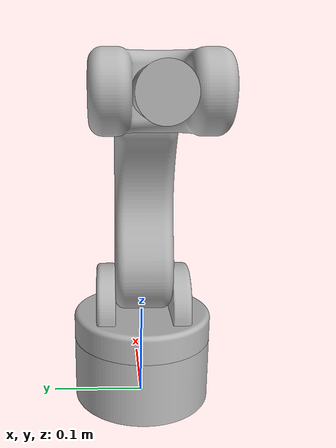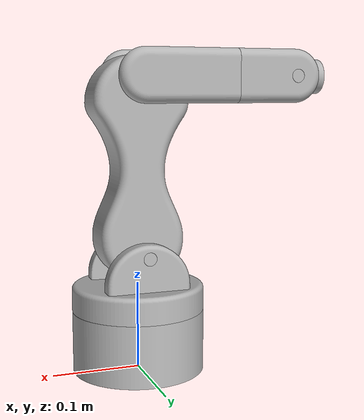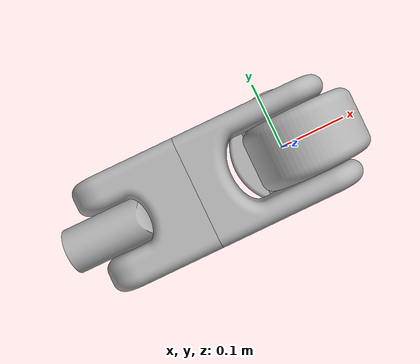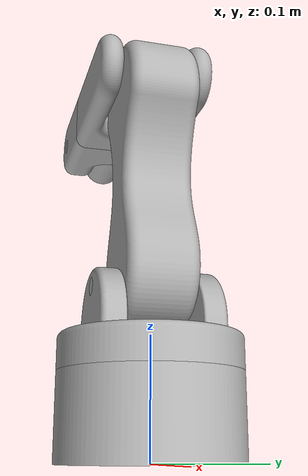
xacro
<?xml version="1.0" ?>
<robot name="poc_1_only_cad_step_03" xmlns:xacro="http://www.ros.org/wiki/xacro">

<xacro:include filename="$(find poc_1_only_cad_step_03_description)/urdf/materials.xacro" />
<xacro:include filename="$(find poc_1_only_cad_step_03_description)/urdf/poc_1_only_cad_step_03.trans" />
<xacro:include filename="$(find poc_1_only_cad_step_03_description)/urdf/poc_1_only_cad_step_03.gazebo" />
<link name="base_link">
  <inertial>
    <origin xyz="1.470482057173849e-17 0.0 0.035" rpy="0 0 0"/>
    <mass value="9.710466542705198"/>
    <inertia ixx="0.01762" iyy="0.01762" izz="0.027311" ixy="0.0" iyz="0.0" ixz="0.0"/>
  </inertial>
  <visual>
    <origin xyz="0 0 0" rpy="0 0 0"/>
    <geometry>
      <mesh filename="package://poc_1_only_cad_step_03_description/meshes/base_link.stl" scale="0.001 0.001 0.001"/>
    </geometry>
    <material name="silver"/>
  </visual>
  <collision>
    <origin xyz="0 0 0" rpy="0 0 0"/>
    <geometry>
      <mesh filename="package://poc_1_only_cad_step_03_description/meshes/base_link.stl" scale="0.001 0.001 0.001"/>
    </geometry>
  </collision>
</link>

<link name="BASIS_OBERPLATTE_1">
  <inertial>
    <origin xyz="1.344893249855621e-17 1.344893249855621e-17 0.0229564682932029" rpy="0 0 0"/>
    <mass value="5.3086246136516335"/>
    <inertia ixx="0.009432" iyy="0.008228" izz="0.014187" ixy="0.0" iyz="-0.0" ixz="0.0"/>
  </inertial>
  <visual>
    <origin xyz="-0.0 -0.0 -0.07" rpy="0 0 0"/>
    <geometry>
      <mesh filename="package://poc_1_only_cad_step_03_description/meshes/BASIS_OBERPLATTE_1.stl" scale="0.001 0.001 0.001"/>
    </geometry>
    <material name="silver"/>
  </visual>
  <collision>
    <origin xyz="-0.0 -0.0 -0.07" rpy="0 0 0"/>
    <geometry>
      <mesh filename="package://poc_1_only_cad_step_03_description/meshes/BASIS_OBERPLATTE_1.stl" scale="0.001 0.001 0.001"/>
    </geometry>
  </collision>
</link>

<link name="_SCHULTER_1">
  <inertial>
    <origin xyz="-2.031275409432855e-08 -0.05000000209276695 0.09583551922085731" rpy="0 0 0"/>
    <mass value="8.802222170078334"/>
    <inertia ixx="0.049352" iyy="0.051702" izz="0.007579" ixy="-0.0" iyz="-0.0" ixz="-0.0"/>
  </inertial>
  <visual>
    <origin xyz="-0.0 -0.05 -0.137" rpy="0 0 0"/>
    <geometry>
      <mesh filename="package://poc_1_only_cad_step_03_description/meshes/_SCHULTER_1.stl" scale="0.001 0.001 0.001"/>
    </geometry>
    <material name="silver"/>
  </visual>
  <collision>
    <origin xyz="-0.0 -0.05 -0.137" rpy="0 0 0"/>
    <geometry>
      <mesh filename="package://poc_1_only_cad_step_03_description/meshes/_SCHULTER_1.stl" scale="0.001 0.001 0.001"/>
    </geometry>
  </collision>
</link>

<link name="ELLBOGEN_1">
  <inertial>
    <origin xyz="-0.05542396440306715 -0.029999971957863022 -1.8519978162157003e-07" rpy="0 0 0"/>
    <mass value="3.176667783695616"/>
    <inertia ixx="0.004806" iyy="0.005446" izz="0.008554" ixy="0.0" iyz="0.0" ixz="0.0"/>
  </inertial>
  <visual>
    <origin xyz="-0.0 -0.03 -0.334365" rpy="0 0 0"/>
    <geometry>
      <mesh filename="package://poc_1_only_cad_step_03_description/meshes/ELLBOGEN_1.stl" scale="0.001 0.001 0.001"/>
    </geometry>
    <material name="silver"/>
  </visual>
  <collision>
    <origin xyz="-0.0 -0.03 -0.334365" rpy="0 0 0"/>
    <geometry>
      <mesh filename="package://poc_1_only_cad_step_03_description/meshes/ELLBOGEN_1.stl" scale="0.001 0.001 0.001"/>
    </geometry>
  </collision>
</link>

<link name="HANDGELENK_DREHUNG_1">
  <inertial>
    <origin xyz="-0.03956168432616332 -1.7267454638072167e-09 -1.864576950616481e-07" rpy="0 0 0"/>
    <mass value="3.3045703933674435"/>
    <inertia ixx="0.004176" iyy="0.003201" izz="0.00553" ixy="0.0" iyz="-0.0" ixz="-0.0"/>
  </inertial>
  <visual>
    <origin xyz="0.105 -0.0 -0.334365" rpy="0 0 0"/>
    <geometry>
      <mesh filename="package://poc_1_only_cad_step_03_description/meshes/HANDGELENK_DREHUNG_1.stl" scale="0.001 0.001 0.001"/>
    </geometry>
    <material name="silver"/>
  </visual>
  <collision>
    <origin xyz="0.105 -0.0 -0.334365" rpy="0 0 0"/>
    <geometry>
      <mesh filename="package://poc_1_only_cad_step_03_description/meshes/HANDGELENK_DREHUNG_1.stl" scale="0.001 0.001 0.001"/>
    </geometry>
  </collision>
</link>

<link name="HANDGELENK_NEIGUNG_1">
  <inertial>
    <origin xyz="-0.01215661231527479 -0.05000000086172498 -1.9214098229136667e-07" rpy="0 0 0"/>
    <mass value="0.8013163276799407"/>
    <inertia ixx="0.000251" iyy="0.000405" izz="0.000515" ixy="0.0" iyz="-0.0" ixz="0.0"/>
  </inertial>
  <visual>
    <origin xyz="0.175 -0.05 -0.334365" rpy="0 0 0"/>
    <geometry>
      <mesh filename="package://poc_1_only_cad_step_03_description/meshes/HANDGELENK_NEIGUNG_1.stl" scale="0.001 0.001 0.001"/>
    </geometry>
    <material name="silver"/>
  </visual>
  <collision>
    <origin xyz="0.175 -0.05 -0.334365" rpy="0 0 0"/>
    <geometry>
      <mesh filename="package://poc_1_only_cad_step_03_description/meshes/HANDGELENK_NEIGUNG_1.stl" scale="0.001 0.001 0.001"/>
    </geometry>
  </collision>
</link>

<joint name="Umdrehung 1" type="continuous">
  <origin xyz="0.0 0.0 0.07" rpy="0 0 0"/>
  <parent link="base_link"/>
  <child link="BASIS_OBERPLATTE_1"/>
  <axis xyz="0.0 0.0 1.0"/>
</joint>

<joint name="Umdrehung 2" type="continuous">
  <origin xyz="0.0 0.05 0.067" rpy="0 0 0"/>
  <parent link="BASIS_OBERPLATTE_1"/>
  <child link="_SCHULTER_1"/>
  <axis xyz="0.0 -1.0 0.0"/>
</joint>

<joint name="Umdrehung 3" type="continuous">
  <origin xyz="0.0 -0.02 0.197365" rpy="0 0 0"/>
  <parent link="_SCHULTER_1"/>
  <child link="ELLBOGEN_1"/>
  <axis xyz="0.0 1.0 0.0"/>
</joint>

<joint name="Umdrehung 4" type="continuous">
  <origin xyz="-0.105 -0.03 0.0" rpy="0 0 0"/>
  <parent link="ELLBOGEN_1"/>
  <child link="HANDGELENK_DREHUNG_1"/>
  <axis xyz="-1.0 0.0 0.0"/>
</joint>

<joint name="Umdrehung 5" type="continuous">
  <origin xyz="-0.07 0.05 0.0" rpy="0 0 0"/>
  <parent link="HANDGELENK_DREHUNG_1"/>
  <child link="HANDGELENK_NEIGUNG_1"/>
  <axis xyz="0.0 -1.0 0.0"/>
</joint>

</robot>

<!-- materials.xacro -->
<robot name="poc_1_only_cad_step_03" xmlns:xacro="http://www.ros.org/wiki/xacro" >

<material name="silver">
  <color rgba="0.700 0.700 0.700 1.000"/>
</material>

</robot>

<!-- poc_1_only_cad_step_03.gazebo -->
<robot name="poc_1_only_cad_step_03" xmlns:xacro="http://www.ros.org/wiki/xacro" >

<xacro:property name="body_color" value="Gazebo/Silver" />

<gazebo>
  <plugin name="control" filename="libgazebo_ros_control.so"/>
</gazebo>
<gazebo reference="base_link">
  <material>${body_color}</material>
  <mu1>0.2</mu1>
  <mu2>0.2</mu2>
  <selfCollide>true</selfCollide>
  <gravity>true</gravity>
</gazebo>

<gazebo reference="BASIS_OBERPLATTE_1">
  <material>${body_color}</material>
  <mu1>0.2</mu1>
  <mu2>0.2</mu2>
  <selfCollide>true</selfCollide>
</gazebo>

<gazebo reference="_SCHULTER_1">
  <material>${body_color}</material>
  <mu1>0.2</mu1>
  <mu2>0.2</mu2>
  <selfCollide>true</selfCollide>
</gazebo>

<gazebo reference="ELLBOGEN_1">
  <material>${body_color}</material>
  <mu1>0.2</mu1>
  <mu2>0.2</mu2>
  <selfCollide>true</selfCollide>
</gazebo>

<gazebo reference="HANDGELENK_DREHUNG_1">
  <material>${body_color}</material>
  <mu1>0.2</mu1>
  <mu2>0.2</mu2>
  <selfCollide>true</selfCollide>
</gazebo>

<gazebo reference="HANDGELENK_NEIGUNG_1">
  <material>${body_color}</material>
  <mu1>0.2</mu1>
  <mu2>0.2</mu2>
  <selfCollide>true</selfCollide>
</gazebo>

</robot>
